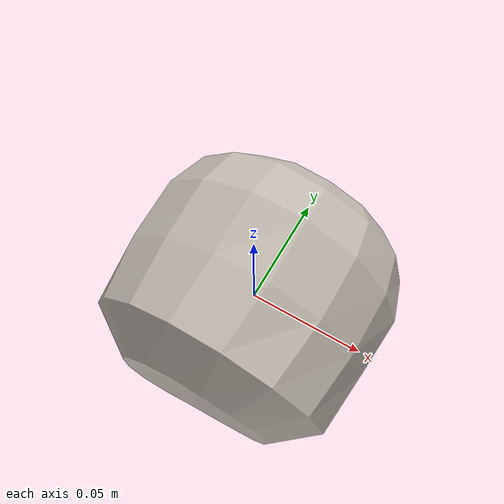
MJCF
<mujoco model="Apple_7">
  <compiler autolimits="true" boundmass="0.01" angle="radian"/>
  <default>
    <default class="/">
      <default class="__VISUAL_MJT__">
        <geom contype="0" conaffinity="0" group="0"/>
      </default>
      <default class="__STRUCTURAL_MJT__">
        <geom contype="8" conaffinity="15" group="4" friction="0.90000000000000002 0.90000000000000002 0.001" solref="0.025000000000000001 1" solimp="0.998 0.998 0.001"/>
      </default>
      <default class="__DYNAMIC_MJT__">
        <geom contype="1" conaffinity="15" group="4" friction="0.90000000000000002 0.90000000000000002 0.001" solref="0.025000000000000001 1" solimp="0.998 0.998 0.001"/>
      </default>
    </default>
  </default>
  <asset>
    <texture name="Apple1_Mat7" type="2d" file="Apple1_AlbedoTransparency7.png"/>
    <material name="material_Apple1_Mat7" class="/" texture="Apple1_Mat7" specular="0.5" shininess="0.5" rgba="1 1 1 1"/>
    <mesh name="Apple_7_apple_a7" class="/" file="Apple_7_apple_a7/Apple_7_apple_a7.obj" scale="1 1 1"/>
  </asset>
  <worldbody>
    <body name="Apple_7">
      <joint name="Apple_7_free" class="/" type="free" pos="0 0 0" axis="0 0 1" stiffness="0" range="0 0" armature="0" damping="0.10000000000000001" frictionloss="0"/>
      <body name="Apple_7_apple_a7" pos="-0 -0.0032799999999999999 0" quat="1 0 0 0">
        <geom name="Apple_7_apple_a7" class="__VISUAL_MJT__" type="mesh" material="material_Apple1_Mat7" shellinertia="false" mesh="Apple_7_apple_a7"/>
        <geom name="Apple_7_PrimitiveCollider_0" class="__DYNAMIC_MJT__" type="capsule" size="0.057721465826034546 0.0053611919283866882" rgba="0 1 0 1" pos="-0 0.0032757595181465149 0" quat="0.70710678118654757 0.70710678118654746 0 0"/>
      </body>
    </body>
  </worldbody>
</mujoco>
